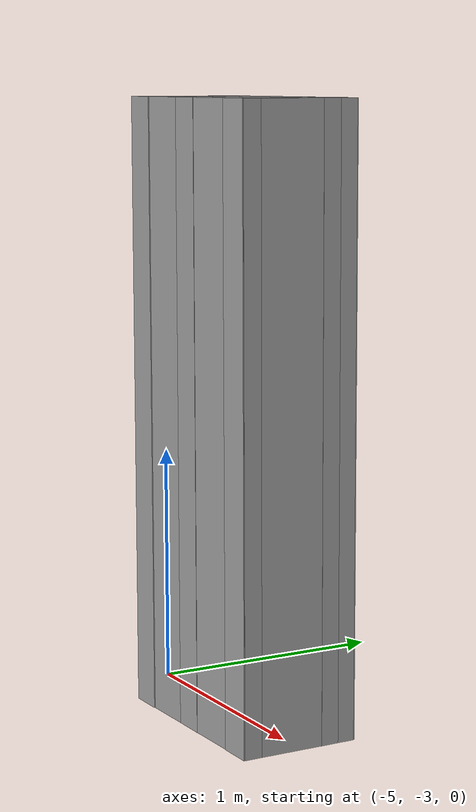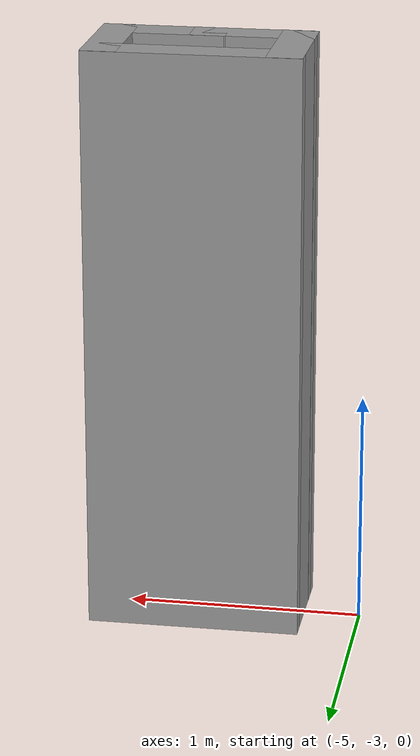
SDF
<?xml version='1.0'?>
<sdf version='1.6'>
  <model name='so0'>
    <pose frame=''>-4.31157 -3.00939 0 0 -0 0</pose>
    <link name='Wall_32'>
      <collision name='Wall_32_Collision'>
        <geometry>
          <box>
            <size>0.15 0.15 2.5</size>
          </box>
        </geometry>
        <pose frame=''>0 0 1.25 0 -0 0</pose>
      </collision>
      <visual name='Wall_32_Visual'>
        <pose frame=''>0 0 1.25 0 -0 0</pose>
        <geometry>
          <box>
            <size>0.15 0.15 2.5</size>
          </box>
        </geometry>
        <material>
          <script>
            <uri>file://media/materials/scripts/gazebo.material</uri>
            <name>Gazebo/Grey</name>
          </script>
          <ambient>1 1 1 1</ambient>
        </material>
        <meta>
          <layer>0</layer>
        </meta>
      </visual>
      <pose frame=''>-0.00843 -0.170607 0 0 -0 0</pose>
    </link>
    <link name='Wall_33'>
      <collision name='Wall_33_Collision'>
        <geometry>
          <box>
            <size>0.15 0.15 2.5</size>
          </box>
        </geometry>
        <pose frame=''>0 0 1.25 0 -0 0</pose>
      </collision>
      <visual name='Wall_33_Visual'>
        <pose frame=''>0 0 1.25 0 -0 0</pose>
        <geometry>
          <box>
            <size>0.15 0.15 2.5</size>
          </box>
        </geometry>
        <material>
          <script>
            <uri>file://media/materials/scripts/gazebo.material</uri>
            <name>Gazebo/Grey</name>
          </script>
          <ambient>1 1 1 1</ambient>
        </material>
        <meta>
          <layer>0</layer>
        </meta>
      </visual>
      <pose frame=''>-0.00843 -0.170607 0 0 -0 0</pose>
    </link>
    <link name='Wall_38'>
      <collision name='Wall_38_Collision'>
        <geometry>
          <box>
            <size>0.901958 0.15 2.5</size>
          </box>
        </geometry>
        <pose frame=''>0 0 1.25 0 -0 0</pose>
      </collision>
      <visual name='Wall_38_Visual'>
        <pose frame=''>0 0 1.25 0 -0 0</pose>
        <geometry>
          <box>
            <size>0.901958 0.15 2.5</size>
          </box>
        </geometry>
        <material>
          <script>
            <uri>file://media/materials/scripts/gazebo.material</uri>
            <name>Gazebo/Grey</name>
          </script>
          <ambient>1 1 1 1</ambient>
        </material>
        <meta>
          <layer>0</layer>
        </meta>
      </visual>
      <pose frame=''>0 -0.169931 0 0 -0 0.008695</pose>
    </link>
    <link name='Wall_39'>
      <collision name='Wall_39_Collision'>
        <geometry>
          <box>
            <size>0.492481 0.15 2.5</size>
          </box>
        </geometry>
        <pose frame=''>0 0 1.25 0 -0 0</pose>
      </collision>
      <visual name='Wall_39_Visual'>
        <pose frame=''>0 0 1.25 0 -0 0</pose>
        <geometry>
          <box>
            <size>0.492481 0.15 2.5</size>
          </box>
        </geometry>
        <material>
          <script>
            <uri>file://media/materials/scripts/gazebo.material</uri>
            <name>Gazebo/Grey</name>
          </script>
          <ambient>1 1 1 1</ambient>
        </material>
        <meta>
          <layer>0</layer>
        </meta>
      </visual>
      <pose frame=''>0.375965 0.00131 0 0 -0 1.5708</pose>
    </link>
    <link name='Wall_40'>
      <collision name='Wall_40_Collision'>
        <geometry>
          <box>
            <size>0.901958 0.15 2.5</size>
          </box>
        </geometry>
        <pose frame=''>0 0 1.25 0 -0 0</pose>
      </collision>
      <visual name='Wall_40_Visual'>
        <pose frame=''>0 0 1.25 0 -0 0</pose>
        <geometry>
          <box>
            <size>0.901958 0.15 2.5</size>
          </box>
        </geometry>
        <material>
          <script>
            <uri>file://media/materials/scripts/gazebo.material</uri>
            <name>Gazebo/Grey</name>
          </script>
          <ambient>1 1 1 1</ambient>
        </material>
        <meta>
          <layer>0</layer>
        </meta>
      </visual>
      <pose frame=''>0 0.172551 0 0 -0 -3.1329</pose>
    </link>
    <link name='Wall_41'>
      <collision name='Wall_41_Collision'>
        <geometry>
          <box>
            <size>0.492481 0.15 2.5</size>
          </box>
        </geometry>
        <pose frame=''>0 0 1.25 0 -0 0</pose>
      </collision>
      <visual name='Wall_41_Visual'>
        <pose frame=''>0 0 1.25 0 -0 0</pose>
        <geometry>
          <box>
            <size>0.492481 0.15 2.5</size>
          </box>
        </geometry>
        <material>
          <script>
            <uri>file://media/materials/scripts/gazebo.material</uri>
            <name>Gazebo/Grey</name>
          </script>
          <ambient>1 1 1 1</ambient>
        </material>
        <meta>
          <layer>0</layer>
        </meta>
      </visual>
      <pose frame=''>-0.375965 -0.005228 0 0 -0 -1.5708</pose>
    </link>
    <static>1</static>
  </model>
</sdf>
